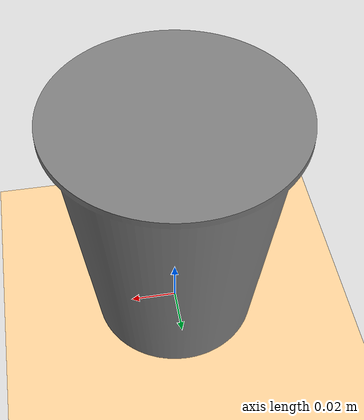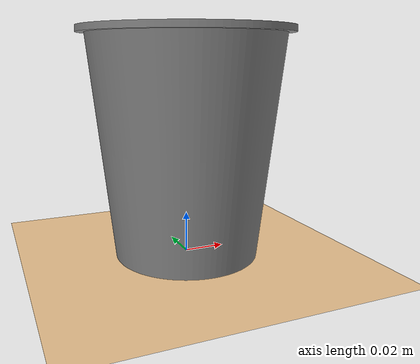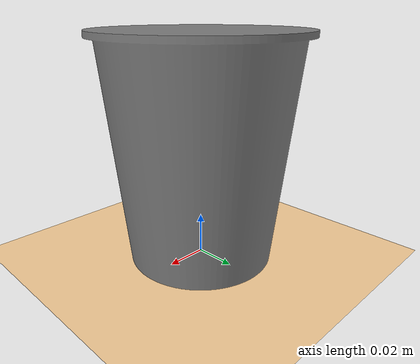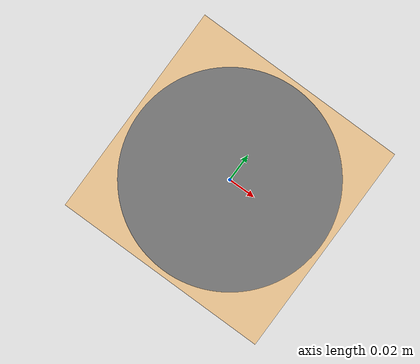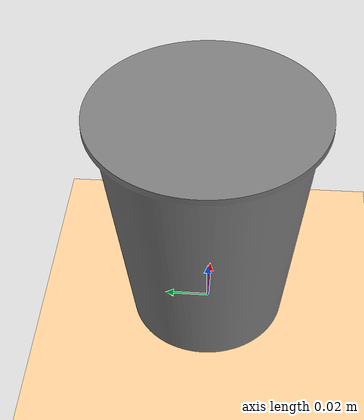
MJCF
<mujoco model="Cup">
    <compiler angle="radian" />
    <asset>
        <mesh name="Cup-Noodles" file="meshes/Cup-Noodles.stl" scale="0.001 0.001 0.001" />
    </asset>
    <worldbody>
        <light directional="true" pos="-0.5 0.5 3" dir="0 0 -1" />
        <geom pos="0 0 0" size="1 1 1" type="plane" rgba="1 0.83 0.61 0.5" />
        <body name="Cup-Noodles" pos="0.0 0.0 0.0" euler="-0.0 0.0 -0.0">
            <geom name="Cup-Noodles_geom" type="mesh" mesh="Cup-Noodles" pos="0 0 0" euler="0 0 0" />
            <inertial mass="0.6818774399304512" pos="1.308800707947914e-17 9.816005309609355e-18 0.06754012523394663" fullinertia="0.001553962846368365 0.0015539628463683494 0.0010061239002708774 4.46220838057343e-19 1.1019657882644435e-18 1.1269761868275745e-18" />
        </body>
    </worldbody>
</mujoco>
